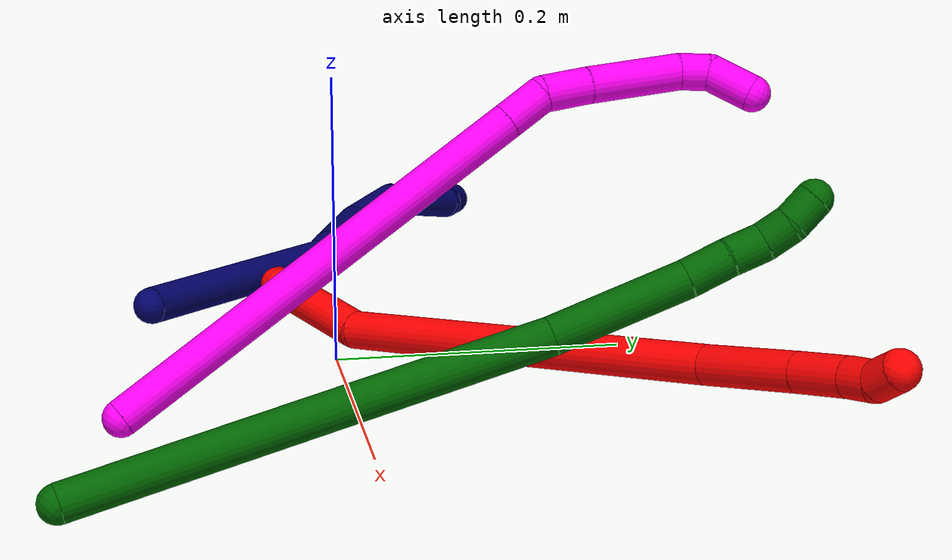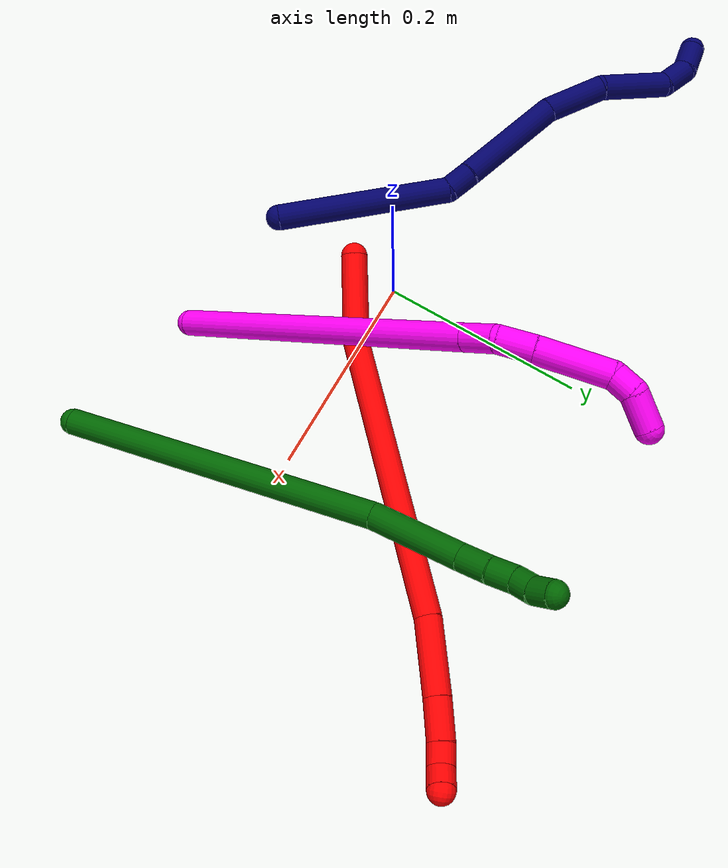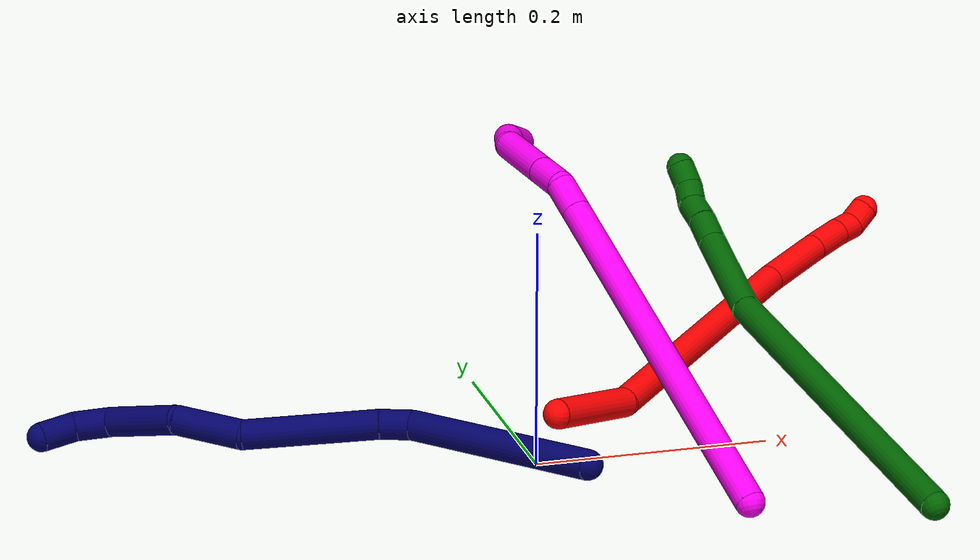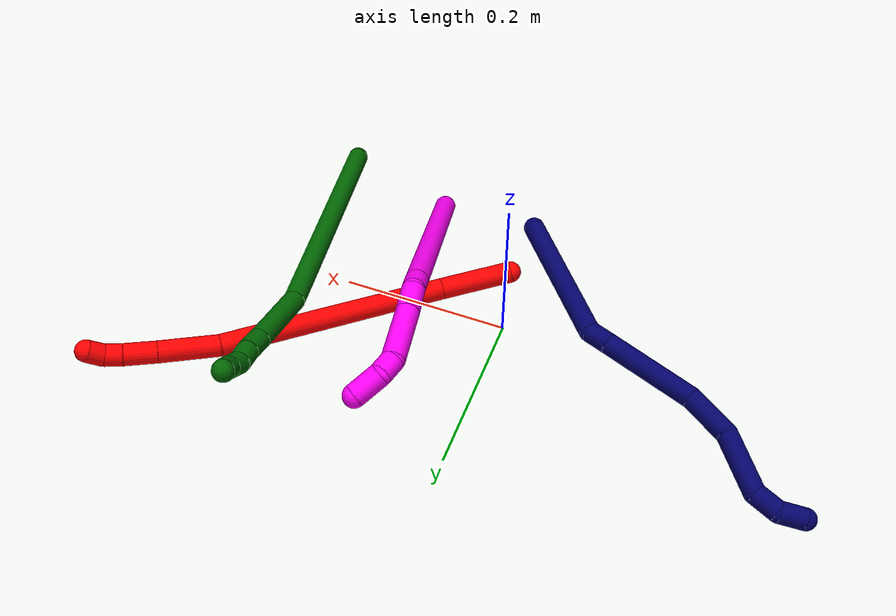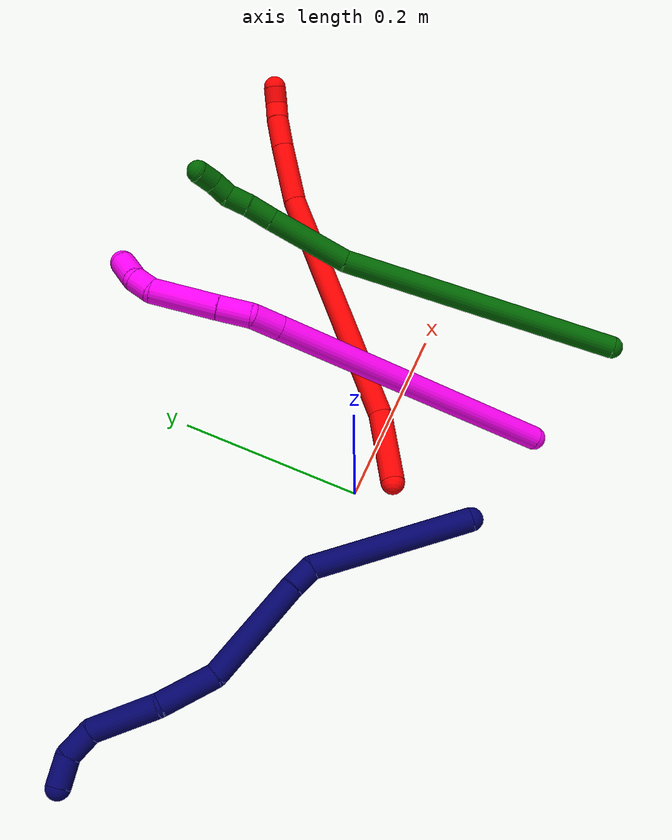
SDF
<sdf version="1.7">
 <world name="default">
  <model name="photoneo_s_sensor">
   <static>1</static>
   <pose>0 0 2 1.57079 1.57079 3.14159</pose>
   <link name="link">
    <inertial><mass>0.1</mass></inertial>
    <sensor name="sensor" type="depth">
     <update_rate>30</update_rate>
     <camera>
      <horizontal_fov>1.22</horizontal_fov>
      <image><width>1920</width><height>1200</height><format>B8G8R8</format></image>
      <clip><near>0.1</near><far>4</far></clip>
      <depth_camera><output>points</output></depth_camera>
     </camera>
     <plugin name="camera_plugin" filename="libgazebo_ros_depth_camera.so">
      <baseline>0.2</baseline>
      <alwaysOn>1</alwaysOn>
      <updateRate>0.0</updateRate>
      <cameraName>camera_ir</cameraName>
      <imageTopicName>/camera/color/image_raw</imageTopicName>
      <cameraInfoTopicName>/camera/color/camera_info</cameraInfoTopicName>
      <depthImageTopicName>/camera/depth/image_raw</depthImageTopicName>
      <depthImageCameraInfoTopicName>/camera/depth/camera_info</depthImageCameraInfoTopicName>
      <pointCloudTopicName>/camera/depth/points</pointCloudTopicName>
      <frameName>fr_optical</frameName>
      <pointCloudCutoff>0.1</pointCloudCutoff>
      <pointCloudCutoffMax>2.0</pointCloudCutoffMax>
      <distortionK1>0</distortionK1>
      <distortionK2>0</distortionK2>
      <distortionK3>0</distortionK3>
      <distortionT1>0</distortionT1>
      <distortionT2>0</distortionT2>
      <CxPrime>0</CxPrime>
      <Cx>0</Cx>
      <Cy>0</Cy>
      <focalLength>0</focalLength>
      <hackBaseline>0</hackBaseline>
     </plugin>
    </sensor>
   </link>
  </model>
  <model name="bin">
   <static>1</static>
   <link name="bottom">
    <collision name="collision-bottom">
     <pose>0 0 -0.01 0 -0 0</pose>
     <geometry><box><size>0.8 0.6 0.02</size></box></geometry>
     <surface>
      <friction><ode><mu>100</mu><mu2>100</mu2></ode></friction>
      <contact><collide_bitmask>65535</collide_bitmask></contact>
     </surface>
    </collision>
   </link>
   <link name="west_wall">
    <collision name="collision-west_wall">
     <pose>-0.41 0 0.1 0 -0 0</pose>
     <geometry><box><size>0.02 0.6 0.2</size></box></geometry>
     <surface>
      <friction><ode><mu>100</mu><mu2>100</mu2></ode></friction>
      <contact><collide_bitmask>65535</collide_bitmask></contact>
     </surface>
    </collision>
   </link>
   <link name="east_wall">
    <collision name="collision-east_wall">
     <pose>0.41 0 0.1 0 -0 0</pose>
     <geometry><box><size>0.02 0.6 0.2</size></box></geometry>
     <surface>
      <friction><ode><mu>100</mu><mu2>100</mu2></ode></friction>
      <contact><collide_bitmask>65535</collide_bitmask></contact>
     </surface>
    </collision>
   </link>
   <link name="south_wall">
    <collision name="collision-south_wall">
     <pose>0 -0.31 0.1 0 -0 0</pose>
     <geometry><box><size>0.8 0.02 0.2</size></box></geometry>
     <surface>
      <friction><ode><mu>100</mu><mu2>100</mu2></ode></friction>
      <contact><collide_bitmask>65535</collide_bitmask></contact>
     </surface>
    </collision>
   </link>
   <link name="north_wall">
    <collision name="collision-north_wall">
     <pose>0 0.31 0.1 0 -0 0</pose>
     <geometry><box><size>0.8 0.02 0.2</size></box></geometry>
     <surface>
      <friction><ode><mu>100</mu><mu2>100</mu2></ode></friction>
      <contact><collide_bitmask>65535</collide_bitmask></contact>
     </surface>
    </collision>
   </link>
  </model>
  <model name="2">
   <static>0</static>
   <link name="2">
    <collision name="collision-cylinder-e_1_1_4">
     <pose>0.006972 0.002266 0.041211 -0.054936 0.167333 -0.004608</pose>
     <geometry><cylinder><radius>0.0125</radius><length>0.083716</length></cylinder></geometry>
     <surface>
      <friction><ode><mu>1.16</mu><mu2>1.16</mu2><slip1>0</slip1><slip2>0</slip2></ode></friction>
      <contact><ode><kp>1e+06</kp><kd>1</kd><max_vel>0</max_vel><min_depth>0.001</min_depth></ode></contact>
     </surface>
    </collision>
    <visual name="visual-cylinder-e_1_1_4">
     <pose>0.006972 0.002266 0.041211 -0.054936 0.167333 -0.004608</pose>
     <geometry><cylinder><radius>0.0125</radius><length>0.083716</length></cylinder></geometry>
     <material><ambient>1 0 0 1</ambient></material>
    </visual>
    <collision name="collision-cylinder-e_2_4_5">
     <pose>0.049408 0.053351 0.203459 -0.383377 0.265331 -0.051786</pose>
     <geometry><cylinder><radius>0.0125</radius><length>0.270488</length></cylinder></geometry>
     <surface>
      <friction><ode><mu>1.16</mu><mu2>1.16</mu2><slip1>0</slip1><slip2>0</slip2></ode></friction>
      <contact><ode><kp>1e+06</kp><kd>1</kd><max_vel>0</max_vel><min_depth>0.001</min_depth></ode></contact>
     </surface>
    </collision>
    <visual name="visual-cylinder-e_2_4_5">
     <pose>0.049408 0.053351 0.203459 -0.383377 0.265331 -0.051786</pose>
     <geometry><cylinder><radius>0.0125</radius><length>0.270488</length></cylinder></geometry>
     <material><ambient>1 0 0 1</ambient></material>
    </visual>
    <collision name="collision-cylinder-e_3_5_6">
     <pose>0.088785 0.114786 0.356349 -0.377126 0.113687 -0.021717</pose>
     <geometry><cylinder><radius>0.0125</radius><length>0.068966</length></cylinder></geometry>
     <surface>
      <friction><ode><mu>1.16</mu><mu2>1.16</mu2><slip1>0</slip1><slip2>0</slip2></ode></friction>
      <contact><ode><kp>1e+06</kp><kd>1</kd><max_vel>0</max_vel><min_depth>0.001</min_depth></ode></contact>
     </surface>
    </collision>
    <visual name="visual-cylinder-e_3_5_6">
     <pose>0.088785 0.114786 0.356349 -0.377126 0.113687 -0.021717</pose>
     <geometry><cylinder><radius>0.0125</radius><length>0.068966</length></cylinder></geometry>
     <material><ambient>1 0 0 1</ambient></material>
    </visual>
    <collision name="collision-cylinder-e_4_6_7">
     <pose>0.094237 0.133826 0.405261 -0.360125 0.084287 -0.015352</pose>
     <geometry><cylinder><radius>0.0125</radius><length>0.036587</length></cylinder></geometry>
     <surface>
      <friction><ode><mu>1.16</mu><mu2>1.16</mu2><slip1>0</slip1><slip2>0</slip2></ode></friction>
      <contact><ode><kp>1e+06</kp><kd>1</kd><max_vel>0</max_vel><min_depth>0.001</min_depth></ode></contact>
     </surface>
    </collision>
    <visual name="visual-cylinder-e_4_6_7">
     <pose>0.094237 0.133826 0.405261 -0.360125 0.084287 -0.015352</pose>
     <geometry><cylinder><radius>0.0125</radius><length>0.036587</length></cylinder></geometry>
     <material><ambient>1 0 0 1</ambient></material>
    </visual>
    <collision name="collision-cylinder-e_5_7_8">
     <pose>0.095849 0.143191 0.431942 -0.296731 0.007145 -0.001068</pose>
     <geometry><cylinder><radius>0.0125</radius><length>0.020124</length></cylinder></geometry>
     <surface>
      <friction><ode><mu>1.16</mu><mu2>1.16</mu2><slip1>0</slip1><slip2>0</slip2></ode></friction>
      <contact><ode><kp>1e+06</kp><kd>1</kd><max_vel>0</max_vel><min_depth>0.001</min_depth></ode></contact>
     </surface>
    </collision>
    <visual name="visual-cylinder-e_5_7_8">
     <pose>0.095849 0.143191 0.431942 -0.296731 0.007145 -0.001068</pose>
     <geometry><cylinder><radius>0.0125</radius><length>0.020124</length></cylinder></geometry>
     <material><ambient>1 0 0 1</ambient></material>
    </visual>
    <collision name="collision-cylinder-e_6_8_2">
     <pose>0.094446 0.152705 0.449036 -0.72139 -0.147105 0.055574</pose>
     <geometry><cylinder><radius>0.0125</radius><length>0.020119</length></cylinder></geometry>
     <surface>
      <friction><ode><mu>1.16</mu><mu2>1.16</mu2><slip1>0</slip1><slip2>0</slip2></ode></friction>
      <contact><ode><kp>1e+06</kp><kd>1</kd><max_vel>0</max_vel><min_depth>0.001</min_depth></ode></contact>
     </surface>
    </collision>
    <visual name="visual-cylinder-e_6_8_2">
     <pose>0.094446 0.152705 0.449036 -0.72139 -0.147105 0.055574</pose>
     <geometry><cylinder><radius>0.0125</radius><length>0.020119</length></cylinder></geometry>
     <material><ambient>1 0 0 1</ambient></material>
    </visual>
    <collision name="collision-sphere-2">
     <pose>0.092972 0.159277 0.456508 0 -0 0</pose>
     <geometry><sphere><radius>0.0125</radius></sphere></geometry>
     <surface>
      <friction><ode><mu>1.16</mu><mu2>1.16</mu2><slip1>0</slip1><slip2>0</slip2></ode></friction>
      <contact><ode><kp>1e+06</kp><kd>1</kd><max_vel>0</max_vel><min_depth>0.001</min_depth></ode></contact>
     </surface>
    </collision>
    <visual name="visual-sphere-2">
     <pose>0.092972 0.159277 0.456508 0 -0 0</pose>
     <geometry><sphere><radius>0.0125</radius></sphere></geometry>
     <material><ambient>1 0 0 1</ambient></material>
    </visual>
    <collision name="collision-sphere-4">
     <pose>0.013943 0.004533 0.082422 0 -0 0</pose>
     <geometry><sphere><radius>0.0125</radius></sphere></geometry>
     <surface>
      <friction><ode><mu>1.16</mu><mu2>1.16</mu2><slip1>0</slip1><slip2>0</slip2></ode></friction>
      <contact><ode><kp>1e+06</kp><kd>1</kd><max_vel>0</max_vel><min_depth>0.001</min_depth></ode></contact>
     </surface>
    </collision>
    <visual name="visual-sphere-4">
     <pose>0.013943 0.004533 0.082422 0 -0 0</pose>
     <geometry><sphere><radius>0.0125</radius></sphere></geometry>
     <material><ambient>1 0 0 1</ambient></material>
    </visual>
    <collision name="collision-sphere-1">
     <geometry><sphere><radius>0.0125</radius></sphere></geometry>
     <surface>
      <friction><ode><mu>1.16</mu><mu2>1.16</mu2><slip1>0</slip1><slip2>0</slip2></ode></friction>
      <contact><ode><kp>1e+06</kp><kd>1</kd><max_vel>0</max_vel><min_depth>0.001</min_depth></ode></contact>
     </surface>
    </collision>
    <visual name="visual-sphere-1">
     <geometry><sphere><radius>0.0125</radius></sphere></geometry>
     <material><ambient>1 0 0 1</ambient></material>
    </visual>
    <collision name="collision-sphere-8">
     <pose>0.095921 0.146133 0.441564 0 -0 0</pose>
     <geometry><sphere><radius>0.0125</radius></sphere></geometry>
     <surface>
      <friction><ode><mu>1.16</mu><mu2>1.16</mu2><slip1>0</slip1><slip2>0</slip2></ode></friction>
      <contact><ode><kp>1e+06</kp><kd>1</kd><max_vel>0</max_vel><min_depth>0.001</min_depth></ode></contact>
     </surface>
    </collision>
    <visual name="visual-sphere-8">
     <pose>0.095921 0.146133 0.441564 0 -0 0</pose>
     <geometry><sphere><radius>0.0125</radius></sphere></geometry>
     <material><ambient>1 0 0 1</ambient></material>
    </visual>
    <collision name="collision-sphere-5">
     <pose>0.084873 0.102169 0.324496 0 -0 0</pose>
     <geometry><sphere><radius>0.0125</radius></sphere></geometry>
     <surface>
      <friction><ode><mu>1.16</mu><mu2>1.16</mu2><slip1>0</slip1><slip2>0</slip2></ode></friction>
      <contact><ode><kp>1e+06</kp><kd>1</kd><max_vel>0</max_vel><min_depth>0.001</min_depth></ode></contact>
     </surface>
    </collision>
    <visual name="visual-sphere-5">
     <pose>0.084873 0.102169 0.324496 0 -0 0</pose>
     <geometry><sphere><radius>0.0125</radius></sphere></geometry>
     <material><ambient>1 0 0 1</ambient></material>
    </visual>
    <collision name="collision-sphere-6">
     <pose>0.092697 0.127402 0.388201 0 -0 0</pose>
     <geometry><sphere><radius>0.0125</radius></sphere></geometry>
     <surface>
      <friction><ode><mu>1.16</mu><mu2>1.16</mu2><slip1>0</slip1><slip2>0</slip2></ode></friction>
      <contact><ode><kp>1e+06</kp><kd>1</kd><max_vel>0</max_vel><min_depth>0.001</min_depth></ode></contact>
     </surface>
    </collision>
    <visual name="visual-sphere-6">
     <pose>0.092697 0.127402 0.388201 0 -0 0</pose>
     <geometry><sphere><radius>0.0125</radius></sphere></geometry>
     <material><ambient>1 0 0 1</ambient></material>
    </visual>
    <collision name="collision-sphere-7">
     <pose>0.095777 0.140249 0.42232 0 -0 0</pose>
     <geometry><sphere><radius>0.0125</radius></sphere></geometry>
     <surface>
      <friction><ode><mu>1.16</mu><mu2>1.16</mu2><slip1>0</slip1><slip2>0</slip2></ode></friction>
      <contact><ode><kp>1e+06</kp><kd>1</kd><max_vel>0</max_vel><min_depth>0.001</min_depth></ode></contact>
     </surface>
    </collision>
    <visual name="visual-sphere-7">
     <pose>0.095777 0.140249 0.42232 0 -0 0</pose>
     <geometry><sphere><radius>0.0125</radius></sphere></geometry>
     <material><ambient>1 0 0 1</ambient></material>
    </visual>
    <inertial>
     <pose>0.054696 0.066774 0.231226 0 -0 0</pose>
     <mass>0.5</mass>
     <inertia>
      <ixx>0.001613</ixx>
      <ixy>0</ixy>
      <ixz>0</ixz>
      <iyy>0.001562</iyy>
      <iyz>0</iyz>
      <izz>-0.001028</izz>
     </inertia>
    </inertial>
   </link>
   <pose>0.006617 -0.039318 0.05814 1.72063 0.398673 2.00578</pose>
  </model>
  <model name="6">
   <static>0</static>
   <link name="6">
    <collision name="collision-cylinder-e_1_1_4">
     <pose>0.003516 0.087813 0.130255 -0.593176 0.02238 -0.00684</pose>
     <geometry><cylinder><radius>0.0125</radius><length>0.31426</length></cylinder></geometry>
     <surface>
      <friction><ode><mu>1.16</mu><mu2>1.16</mu2><slip1>0</slip1><slip2>0</slip2></ode></friction>
      <contact><ode><kp>1e+06</kp><kd>1</kd><max_vel>0</max_vel><min_depth>0.001</min_depth></ode></contact>
     </surface>
    </collision>
    <visual name="visual-cylinder-e_1_1_4">
     <pose>0.003516 0.087813 0.130255 -0.593176 0.02238 -0.00684</pose>
     <geometry><cylinder><radius>0.0125</radius><length>0.31426</length></cylinder></geometry>
     <material><ambient>0 0.392157 0.003922 1</ambient></material>
    </visual>
    <collision name="collision-cylinder-e_2_4_5">
     <pose>0.014373 0.194776 0.301304 -0.438875 0.161468 -0.036087</pose>
     <geometry><cylinder><radius>0.0125</radius><length>0.091319</length></cylinder></geometry>
     <surface>
      <friction><ode><mu>1.16</mu><mu2>1.16</mu2><slip1>0</slip1><slip2>0</slip2></ode></friction>
      <contact><ode><kp>1e+06</kp><kd>1</kd><max_vel>0</max_vel><min_depth>0.001</min_depth></ode></contact>
     </surface>
    </collision>
    <visual name="visual-cylinder-e_2_4_5">
     <pose>0.014373 0.194776 0.301304 -0.438875 0.161468 -0.036087</pose>
     <geometry><cylinder><radius>0.0125</radius><length>0.091319</length></cylinder></geometry>
     <material><ambient>0 0.392157 0.003922 1</ambient></material>
    </visual>
    <collision name="collision-cylinder-e_3_5_6">
     <pose>0.023781 0.219076 0.355564 -0.36536 0.142385 -0.026347</pose>
     <geometry><cylinder><radius>0.0125</radius><length>0.029128</length></cylinder></geometry>
     <surface>
      <friction><ode><mu>1.16</mu><mu2>1.16</mu2><slip1>0</slip1><slip2>0</slip2></ode></friction>
      <contact><ode><kp>1e+06</kp><kd>1</kd><max_vel>0</max_vel><min_depth>0.001</min_depth></ode></contact>
     </surface>
    </collision>
    <visual name="visual-cylinder-e_3_5_6">
     <pose>0.023781 0.219076 0.355564 -0.36536 0.142385 -0.026347</pose>
     <geometry><cylinder><radius>0.0125</radius><length>0.029128</length></cylinder></geometry>
     <material><ambient>0 0.392157 0.003922 1</ambient></material>
    </visual>
    <collision name="collision-cylinder-e_4_6_7">
     <pose>0.026885 0.229564 0.379808 -0.459743 0.086096 -0.020159</pose>
     <geometry><cylinder><radius>0.0125</radius><length>0.024144</length></cylinder></geometry>
     <surface>
      <friction><ode><mu>1.16</mu><mu2>1.16</mu2><slip1>0</slip1><slip2>0</slip2></ode></friction>
      <contact><ode><kp>1e+06</kp><kd>1</kd><max_vel>0</max_vel><min_depth>0.001</min_depth></ode></contact>
     </surface>
    </collision>
    <visual name="visual-cylinder-e_4_6_7">
     <pose>0.026885 0.229564 0.379808 -0.459743 0.086096 -0.020159</pose>
     <geometry><cylinder><radius>0.0125</radius><length>0.024144</length></cylinder></geometry>
     <material><ambient>0 0.392157 0.003922 1</ambient></material>
    </visual>
    <collision name="collision-cylinder-e_5_7_8">
     <pose>0.030334 0.236506 0.400235 -0.164855 0.241611 -0.020058</pose>
     <geometry><cylinder><radius>0.0125</radius><length>0.020147</length></cylinder></geometry>
     <surface>
      <friction><ode><mu>1.16</mu><mu2>1.16</mu2><slip1>0</slip1><slip2>0</slip2></ode></friction>
      <contact><ode><kp>1e+06</kp><kd>1</kd><max_vel>0</max_vel><min_depth>0.001</min_depth></ode></contact>
     </surface>
    </collision>
    <visual name="visual-cylinder-e_5_7_8">
     <pose>0.030334 0.236506 0.400235 -0.164855 0.241611 -0.020058</pose>
     <geometry><cylinder><radius>0.0125</radius><length>0.020147</length></cylinder></geometry>
     <material><ambient>0 0.392157 0.003922 1</ambient></material>
    </visual>
    <collision name="collision-cylinder-e_6_8_2">
     <pose>0.032469 0.238738 0.420361 -0.059837 -0.026183 0.000784</pose>
     <geometry><cylinder><radius>0.0125</radius><length>0.021001</length></cylinder></geometry>
     <surface>
      <friction><ode><mu>1.16</mu><mu2>1.16</mu2><slip1>0</slip1><slip2>0</slip2></ode></friction>
      <contact><ode><kp>1e+06</kp><kd>1</kd><max_vel>0</max_vel><min_depth>0.001</min_depth></ode></contact>
     </surface>
    </collision>
    <visual name="visual-cylinder-e_6_8_2">
     <pose>0.032469 0.238738 0.420361 -0.059837 -0.026183 0.000784</pose>
     <geometry><cylinder><radius>0.0125</radius><length>0.021001</length></cylinder></geometry>
     <material><ambient>0 0.392157 0.003922 1</ambient></material>
    </visual>
    <collision name="collision-sphere-2">
     <pose>0.032194 0.239366 0.43084 0 -0 0</pose>
     <geometry><sphere><radius>0.0125</radius></sphere></geometry>
     <surface>
      <friction><ode><mu>1.16</mu><mu2>1.16</mu2><slip1>0</slip1><slip2>0</slip2></ode></friction>
      <contact><ode><kp>1e+06</kp><kd>1</kd><max_vel>0</max_vel><min_depth>0.001</min_depth></ode></contact>
     </surface>
    </collision>
    <visual name="visual-sphere-2">
     <pose>0.032194 0.239366 0.43084 0 -0 0</pose>
     <geometry><sphere><radius>0.0125</radius></sphere></geometry>
     <material><ambient>0 0.392157 0.003922 1</ambient></material>
    </visual>
    <collision name="collision-sphere-4">
     <pose>0.007033 0.175626 0.26051 0 -0 0</pose>
     <geometry><sphere><radius>0.0125</radius></sphere></geometry>
     <surface>
      <friction><ode><mu>1.16</mu><mu2>1.16</mu2><slip1>0</slip1><slip2>0</slip2></ode></friction>
      <contact><ode><kp>1e+06</kp><kd>1</kd><max_vel>0</max_vel><min_depth>0.001</min_depth></ode></contact>
     </surface>
    </collision>
    <visual name="visual-sphere-4">
     <pose>0.007033 0.175626 0.26051 0 -0 0</pose>
     <geometry><sphere><radius>0.0125</radius></sphere></geometry>
     <material><ambient>0 0.392157 0.003922 1</ambient></material>
    </visual>
    <collision name="collision-sphere-1">
     <geometry><sphere><radius>0.0125</radius></sphere></geometry>
     <surface>
      <friction><ode><mu>1.16</mu><mu2>1.16</mu2><slip1>0</slip1><slip2>0</slip2></ode></friction>
      <contact><ode><kp>1e+06</kp><kd>1</kd><max_vel>0</max_vel><min_depth>0.001</min_depth></ode></contact>
     </surface>
    </collision>
    <visual name="visual-sphere-1">
     <geometry><sphere><radius>0.0125</radius></sphere></geometry>
     <material><ambient>0 0.392157 0.003922 1</ambient></material>
    </visual>
    <collision name="collision-sphere-8">
     <pose>0.032744 0.238111 0.409883 0 -0 0</pose>
     <geometry><sphere><radius>0.0125</radius></sphere></geometry>
     <surface>
      <friction><ode><mu>1.16</mu><mu2>1.16</mu2><slip1>0</slip1><slip2>0</slip2></ode></friction>
      <contact><ode><kp>1e+06</kp><kd>1</kd><max_vel>0</max_vel><min_depth>0.001</min_depth></ode></contact>
     </surface>
    </collision>
    <visual name="visual-sphere-8">
     <pose>0.032744 0.238111 0.409883 0 -0 0</pose>
     <geometry><sphere><radius>0.0125</radius></sphere></geometry>
     <material><ambient>0 0.392157 0.003922 1</ambient></material>
    </visual>
    <collision name="collision-sphere-5">
     <pose>0.021714 0.213925 0.342099 0 -0 0</pose>
     <geometry><sphere><radius>0.0125</radius></sphere></geometry>
     <surface>
      <friction><ode><mu>1.16</mu><mu2>1.16</mu2><slip1>0</slip1><slip2>0</slip2></ode></friction>
      <contact><ode><kp>1e+06</kp><kd>1</kd><max_vel>0</max_vel><min_depth>0.001</min_depth></ode></contact>
     </surface>
    </collision>
    <visual name="visual-sphere-5">
     <pose>0.021714 0.213925 0.342099 0 -0 0</pose>
     <geometry><sphere><radius>0.0125</radius></sphere></geometry>
     <material><ambient>0 0.392157 0.003922 1</ambient></material>
    </visual>
    <collision name="collision-sphere-6">
     <pose>0.025847 0.224227 0.369029 0 -0 0</pose>
     <geometry><sphere><radius>0.0125</radius></sphere></geometry>
     <surface>
      <friction><ode><mu>1.16</mu><mu2>1.16</mu2><slip1>0</slip1><slip2>0</slip2></ode></friction>
      <contact><ode><kp>1e+06</kp><kd>1</kd><max_vel>0</max_vel><min_depth>0.001</min_depth></ode></contact>
     </surface>
    </collision>
    <visual name="visual-sphere-6">
     <pose>0.025847 0.224227 0.369029 0 -0 0</pose>
     <geometry><sphere><radius>0.0125</radius></sphere></geometry>
     <material><ambient>0 0.392157 0.003922 1</ambient></material>
    </visual>
    <collision name="collision-sphere-7">
     <pose>0.027923 0.2349 0.390586 0 -0 0</pose>
     <geometry><sphere><radius>0.0125</radius></sphere></geometry>
     <surface>
      <friction><ode><mu>1.16</mu><mu2>1.16</mu2><slip1>0</slip1><slip2>0</slip2></ode></friction>
      <contact><ode><kp>1e+06</kp><kd>1</kd><max_vel>0</max_vel><min_depth>0.001</min_depth></ode></contact>
     </surface>
    </collision>
    <visual name="visual-sphere-7">
     <pose>0.027923 0.2349 0.390586 0 -0 0</pose>
     <geometry><sphere><radius>0.0125</radius></sphere></geometry>
     <material><ambient>0 0.392157 0.003922 1</ambient></material>
    </visual>
    <inertial>
     <pose>0.010105 0.134171 0.209735 0 -0 0</pose>
     <mass>0.5</mass>
     <inertia>
      <ixx>0.002655</ixx>
      <ixy>0</ixy>
      <ixz>0</ixz>
      <iyy>0.002222</iyy>
      <iyz>0</iyz>
      <izz>-0.001519</izz>
     </inertia>
    </inertial>
   </link>
   <pose>0.272287 -0.194972 0.011659 -0.757957 0.060674 0.215802</pose>
  </model>
  <model name="7">
   <static>0</static>
   <link name="7">
    <collision name="collision-cylinder-e_1_1_4">
     <pose>-0.050271 0.011015 0.066929 -0.163117 -0.637803 0.053963</pose>
     <geometry><cylinder><radius>0.0125</radius><length>0.168855</length></cylinder></geometry>
     <surface>
      <friction><ode><mu>1.16</mu><mu2>1.16</mu2><slip1>0</slip1><slip2>0</slip2></ode></friction>
      <contact><ode><kp>1e+06</kp><kd>1</kd><max_vel>0</max_vel><min_depth>0.001</min_depth></ode></contact>
     </surface>
    </collision>
    <visual name="visual-cylinder-e_1_1_4">
     <pose>-0.050271 0.011015 0.066929 -0.163117 -0.637803 0.053963</pose>
     <geometry><cylinder><radius>0.0125</radius><length>0.168855</length></cylinder></geometry>
     <material><ambient>0.003922 0 0.403922 1</ambient></material>
    </visual>
    <collision name="collision-cylinder-e_2_4_5">
     <pose>-0.1113 0.027528 0.139541 -0.768828 -0.937048 0.403902</pose>
     <geometry><cylinder><radius>0.0125</radius><length>0.026703</length></cylinder></geometry>
     <surface>
      <friction><ode><mu>1.16</mu><mu2>1.16</mu2><slip1>0</slip1><slip2>0</slip2></ode></friction>
      <contact><ode><kp>1e+06</kp><kd>1</kd><max_vel>0</max_vel><min_depth>0.001</min_depth></ode></contact>
     </surface>
    </collision>
    <visual name="visual-cylinder-e_2_4_5">
     <pose>-0.1113 0.027528 0.139541 -0.768828 -0.937048 0.403902</pose>
     <geometry><cylinder><radius>0.0125</radius><length>0.026703</length></cylinder></geometry>
     <material><ambient>0.003922 0 0.403922 1</ambient></material>
    </visual>
    <collision name="collision-cylinder-e_3_5_6">
     <pose>-0.165006 0.061549 0.168205 -0.892597 -0.864614 0.434601</pose>
     <geometry><cylinder><radius>0.0125</radius><length>0.112894</length></cylinder></geometry>
     <surface>
      <friction><ode><mu>1.16</mu><mu2>1.16</mu2><slip1>0</slip1><slip2>0</slip2></ode></friction>
      <contact><ode><kp>1e+06</kp><kd>1</kd><max_vel>0</max_vel><min_depth>0.001</min_depth></ode></contact>
     </surface>
    </collision>
    <visual name="visual-cylinder-e_3_5_6">
     <pose>-0.165006 0.061549 0.168205 -0.892597 -0.864614 0.434601</pose>
     <geometry><cylinder><radius>0.0125</radius><length>0.112894</length></cylinder></geometry>
     <material><ambient>0.003922 0 0.403922 1</ambient></material>
    </visual>
    <collision name="collision-cylinder-e_4_6_7">
     <pose>-0.230416 0.09571 0.210008 -0.291004 -0.852146 0.132824</pose>
     <geometry><cylinder><radius>0.0125</radius><length>0.059686</length></cylinder></geometry>
     <surface>
      <friction><ode><mu>1.16</mu><mu2>1.16</mu2><slip1>0</slip1><slip2>0</slip2></ode></friction>
      <contact><ode><kp>1e+06</kp><kd>1</kd><max_vel>0</max_vel><min_depth>0.001</min_depth></ode></contact>
     </surface>
    </collision>
    <visual name="visual-cylinder-e_4_6_7">
     <pose>-0.230416 0.09571 0.210008 -0.291004 -0.852146 0.132824</pose>
     <geometry><cylinder><radius>0.0125</radius><length>0.059686</length></cylinder></geometry>
     <material><ambient>0.003922 0 0.403922 1</ambient></material>
    </visual>
    <collision name="collision-cylinder-e_5_7_8">
     <pose>-0.269336 0.111922 0.258475 -0.342646 -0.48178 0.084957</pose>
     <geometry><cylinder><radius>0.0125</radius><length>0.071035</length></cylinder></geometry>
     <surface>
      <friction><ode><mu>1.16</mu><mu2>1.16</mu2><slip1>0</slip1><slip2>0</slip2></ode></friction>
      <contact><ode><kp>1e+06</kp><kd>1</kd><max_vel>0</max_vel><min_depth>0.001</min_depth></ode></contact>
     </surface>
    </collision>
    <visual name="visual-cylinder-e_5_7_8">
     <pose>-0.269336 0.111922 0.258475 -0.342646 -0.48178 0.084957</pose>
     <geometry><cylinder><radius>0.0125</radius><length>0.071035</length></cylinder></geometry>
     <material><ambient>0.003922 0 0.403922 1</ambient></material>
    </visual>
    <collision name="collision-cylinder-e_6_8_9">
     <pose>-0.296696 0.130658 0.295379 -0.843799 -0.78447 0.367173</pose>
     <geometry><cylinder><radius>0.0125</radius><length>0.030866</length></cylinder></geometry>
     <surface>
      <friction><ode><mu>1.16</mu><mu2>1.16</mu2><slip1>0</slip1><slip2>0</slip2></ode></friction>
      <contact><ode><kp>1e+06</kp><kd>1</kd><max_vel>0</max_vel><min_depth>0.001</min_depth></ode></contact>
     </surface>
    </collision>
    <visual name="visual-cylinder-e_6_8_9">
     <pose>-0.296696 0.130658 0.295379 -0.843799 -0.78447 0.367173</pose>
     <geometry><cylinder><radius>0.0125</radius><length>0.030866</length></cylinder></geometry>
     <material><ambient>0.003922 0 0.403922 1</ambient></material>
    </visual>
    <collision name="collision-cylinder-e_7_9_2">
     <pose>-0.318141 0.149461 0.302852 -1.55074 -0.78058 0.766565</pose>
     <geometry><cylinder><radius>0.0125</radius><length>0.029962</length></cylinder></geometry>
     <surface>
      <friction><ode><mu>1.16</mu><mu2>1.16</mu2><slip1>0</slip1><slip2>0</slip2></ode></friction>
      <contact><ode><kp>1e+06</kp><kd>1</kd><max_vel>0</max_vel><min_depth>0.001</min_depth></ode></contact>
     </surface>
    </collision>
    <visual name="visual-cylinder-e_7_9_2">
     <pose>-0.318141 0.149461 0.302852 -1.55074 -0.78058 0.766565</pose>
     <geometry><cylinder><radius>0.0125</radius><length>0.029962</length></cylinder></geometry>
     <material><ambient>0.003922 0 0.403922 1</ambient></material>
    </visual>
    <collision name="collision-sphere-2">
     <pose>-0.328683 0.160103 0.303066 0 -0 0</pose>
     <geometry><sphere><radius>0.0125</radius></sphere></geometry>
     <surface>
      <friction><ode><mu>1.16</mu><mu2>1.16</mu2><slip1>0</slip1><slip2>0</slip2></ode></friction>
      <contact><ode><kp>1e+06</kp><kd>1</kd><max_vel>0</max_vel><min_depth>0.001</min_depth></ode></contact>
     </surface>
    </collision>
    <visual name="visual-sphere-2">
     <pose>-0.328683 0.160103 0.303066 0 -0 0</pose>
     <geometry><sphere><radius>0.0125</radius></sphere></geometry>
     <material><ambient>0.003922 0 0.403922 1</ambient></material>
    </visual>
    <collision name="collision-sphere-9">
     <pose>-0.307599 0.13882 0.302639 0 -0 0</pose>
     <geometry><sphere><radius>0.0125</radius></sphere></geometry>
     <surface>
      <friction><ode><mu>1.16</mu><mu2>1.16</mu2><slip1>0</slip1><slip2>0</slip2></ode></friction>
      <contact><ode><kp>1e+06</kp><kd>1</kd><max_vel>0</max_vel><min_depth>0.001</min_depth></ode></contact>
     </surface>
    </collision>
    <visual name="visual-sphere-9">
     <pose>-0.307599 0.13882 0.302639 0 -0 0</pose>
     <geometry><sphere><radius>0.0125</radius></sphere></geometry>
     <material><ambient>0.003922 0 0.403922 1</ambient></material>
    </visual>
    <collision name="collision-sphere-4">
     <pose>-0.100542 0.02203 0.133858 0 -0 0</pose>
     <geometry><sphere><radius>0.0125</radius></sphere></geometry>
     <surface>
      <friction><ode><mu>1.16</mu><mu2>1.16</mu2><slip1>0</slip1><slip2>0</slip2></ode></friction>
      <contact><ode><kp>1e+06</kp><kd>1</kd><max_vel>0</max_vel><min_depth>0.001</min_depth></ode></contact>
     </surface>
    </collision>
    <visual name="visual-sphere-4">
     <pose>-0.100542 0.02203 0.133858 0 -0 0</pose>
     <geometry><sphere><radius>0.0125</radius></sphere></geometry>
     <material><ambient>0.003922 0 0.403922 1</ambient></material>
    </visual>
    <collision name="collision-sphere-1">
     <geometry><sphere><radius>0.0125</radius></sphere></geometry>
     <surface>
      <friction><ode><mu>1.16</mu><mu2>1.16</mu2><slip1>0</slip1><slip2>0</slip2></ode></friction>
      <contact><ode><kp>1e+06</kp><kd>1</kd><max_vel>0</max_vel><min_depth>0.001</min_depth></ode></contact>
     </surface>
    </collision>
    <visual name="visual-sphere-1">
     <geometry><sphere><radius>0.0125</radius></sphere></geometry>
     <material><ambient>0.003922 0 0.403922 1</ambient></material>
    </visual>
    <collision name="collision-sphere-8">
     <pose>-0.285794 0.122497 0.288119 0 -0 0</pose>
     <geometry><sphere><radius>0.0125</radius></sphere></geometry>
     <surface>
      <friction><ode><mu>1.16</mu><mu2>1.16</mu2><slip1>0</slip1><slip2>0</slip2></ode></friction>
      <contact><ode><kp>1e+06</kp><kd>1</kd><max_vel>0</max_vel><min_depth>0.001</min_depth></ode></contact>
     </surface>
    </collision>
    <visual name="visual-sphere-8">
     <pose>-0.285794 0.122497 0.288119 0 -0 0</pose>
     <geometry><sphere><radius>0.0125</radius></sphere></geometry>
     <material><ambient>0.003922 0 0.403922 1</ambient></material>
    </visual>
    <collision name="collision-sphere-5">
     <pose>-0.122059 0.033025 0.145223 0 -0 0</pose>
     <geometry><sphere><radius>0.0125</radius></sphere></geometry>
     <surface>
      <friction><ode><mu>1.16</mu><mu2>1.16</mu2><slip1>0</slip1><slip2>0</slip2></ode></friction>
      <contact><ode><kp>1e+06</kp><kd>1</kd><max_vel>0</max_vel><min_depth>0.001</min_depth></ode></contact>
     </surface>
    </collision>
    <visual name="visual-sphere-5">
     <pose>-0.122059 0.033025 0.145223 0 -0 0</pose>
     <geometry><sphere><radius>0.0125</radius></sphere></geometry>
     <material><ambient>0.003922 0 0.403922 1</ambient></material>
    </visual>
    <collision name="collision-sphere-6">
     <pose>-0.207954 0.090073 0.191186 0 -0 0</pose>
     <geometry><sphere><radius>0.0125</radius></sphere></geometry>
     <surface>
      <friction><ode><mu>1.16</mu><mu2>1.16</mu2><slip1>0</slip1><slip2>0</slip2></ode></friction>
      <contact><ode><kp>1e+06</kp><kd>1</kd><max_vel>0</max_vel><min_depth>0.001</min_depth></ode></contact>
     </surface>
    </collision>
    <visual name="visual-sphere-6">
     <pose>-0.207954 0.090073 0.191186 0 -0 0</pose>
     <geometry><sphere><radius>0.0125</radius></sphere></geometry>
     <material><ambient>0.003922 0 0.403922 1</ambient></material>
    </visual>
    <collision name="collision-sphere-7">
     <pose>-0.252879 0.101347 0.22883 0 -0 0</pose>
     <geometry><sphere><radius>0.0125</radius></sphere></geometry>
     <surface>
      <friction><ode><mu>1.16</mu><mu2>1.16</mu2><slip1>0</slip1><slip2>0</slip2></ode></friction>
      <contact><ode><kp>1e+06</kp><kd>1</kd><max_vel>0</max_vel><min_depth>0.001</min_depth></ode></contact>
     </surface>
    </collision>
    <visual name="visual-sphere-7">
     <pose>-0.252879 0.101347 0.22883 0 -0 0</pose>
     <geometry><sphere><radius>0.0125</radius></sphere></geometry>
     <material><ambient>0.003922 0 0.403922 1</ambient></material>
    </visual>
    <inertial>
     <pose>-0.163327 0.063435 0.166206 0 -0 0</pose>
     <mass>0.5</mass>
     <inertia>
      <ixx>0.000481</ixx>
      <ixy>0</ixy>
      <ixz>0</ixz>
      <iyy>0.000635</iyy>
      <iyz>0</iyz>
      <izz>0.000263</izz>
     </inertia>
    </inertial>
   </link>
   <pose>0.005303 -0.126161 0.047442 -1.95717 0.590474 -0.104979</pose>
  </model>
  <model name="10">
   <static>0</static>
   <link name="10">
    <collision name="collision-cylinder-e_1_1_4">
     <pose>-0.014667 0.073038 0.139967 -0.480956 -0.092638 0.022732</pose>
     <geometry><cylinder><radius>0.0125</radius><length>0.317114</length></cylinder></geometry>
     <surface>
      <friction><ode><mu>1.16</mu><mu2>1.16</mu2><slip1>0</slip1><slip2>0</slip2></ode></friction>
      <contact><ode><kp>1e+06</kp><kd>1</kd><max_vel>0</max_vel><min_depth>0.001</min_depth></ode></contact>
     </surface>
    </collision>
    <visual name="visual-cylinder-e_1_1_4">
     <pose>-0.014667 0.073038 0.139967 -0.480956 -0.092638 0.022732</pose>
     <geometry><cylinder><radius>0.0125</radius><length>0.317114</length></cylinder></geometry>
     <material><ambient>1 0 0.964706 1</ambient></material>
    </visual>
    <collision name="collision-cylinder-e_2_4_5">
     <pose>-0.030795 0.152994 0.293278 -0.478249 -0.096821 0.023621</pose>
     <geometry><cylinder><radius>0.0125</radius><length>0.030204</length></cylinder></geometry>
     <surface>
      <friction><ode><mu>1.16</mu><mu2>1.16</mu2><slip1>0</slip1><slip2>0</slip2></ode></friction>
      <contact><ode><kp>1e+06</kp><kd>1</kd><max_vel>0</max_vel><min_depth>0.001</min_depth></ode></contact>
     </surface>
    </collision>
    <visual name="visual-cylinder-e_2_4_5">
     <pose>-0.030795 0.152994 0.293278 -0.478249 -0.096821 0.023621</pose>
     <geometry><cylinder><radius>0.0125</radius><length>0.030204</length></cylinder></geometry>
     <material><ambient>1 0 0.964706 1</ambient></material>
    </visual>
    <collision name="collision-cylinder-e_3_5_6">
     <pose>-0.033013 0.173157 0.316363 -0.936722 -0.046073 0.023312</pose>
     <geometry><cylinder><radius>0.0125</radius><length>0.032917</length></cylinder></geometry>
     <surface>
      <friction><ode><mu>1.16</mu><mu2>1.16</mu2><slip1>0</slip1><slip2>0</slip2></ode></friction>
      <contact><ode><kp>1e+06</kp><kd>1</kd><max_vel>0</max_vel><min_depth>0.001</min_depth></ode></contact>
     </surface>
    </collision>
    <visual name="visual-cylinder-e_3_5_6">
     <pose>-0.033013 0.173157 0.316363 -0.936722 -0.046073 0.023312</pose>
     <geometry><cylinder><radius>0.0125</radius><length>0.032917</length></cylinder></geometry>
     <material><ambient>1 0 0.964706 1</ambient></material>
    </visual>
    <collision name="collision-cylinder-e_4_6_7">
     <pose>-0.034006 0.213655 0.344979 -0.965031 -0.007089 0.003713</pose>
     <geometry><cylinder><radius>0.0125</radius><length>0.066304</length></cylinder></geometry>
     <surface>
      <friction><ode><mu>1.16</mu><mu2>1.16</mu2><slip1>0</slip1><slip2>0</slip2></ode></friction>
      <contact><ode><kp>1e+06</kp><kd>1</kd><max_vel>0</max_vel><min_depth>0.001</min_depth></ode></contact>
     </surface>
    </collision>
    <visual name="visual-cylinder-e_4_6_7">
     <pose>-0.034006 0.213655 0.344979 -0.965031 -0.007089 0.003713</pose>
     <geometry><cylinder><radius>0.0125</radius><length>0.066304</length></cylinder></geometry>
     <material><ambient>1 0 0.964706 1</ambient></material>
    </visual>
    <collision name="collision-cylinder-e_5_7_8">
     <pose>-0.030159 0.249267 0.368808 -1.0359 0.397714 -0.228667</pose>
     <geometry><cylinder><radius>0.0125</radius><length>0.021078</length></cylinder></geometry>
     <surface>
      <friction><ode><mu>1.16</mu><mu2>1.16</mu2><slip1>0</slip1><slip2>0</slip2></ode></friction>
      <contact><ode><kp>1e+06</kp><kd>1</kd><max_vel>0</max_vel><min_depth>0.001</min_depth></ode></contact>
     </surface>
    </collision>
    <visual name="visual-cylinder-e_5_7_8">
     <pose>-0.030159 0.249267 0.368808 -1.0359 0.397714 -0.228667</pose>
     <geometry><cylinder><radius>0.0125</radius><length>0.021078</length></cylinder></geometry>
     <material><ambient>1 0 0.964706 1</ambient></material>
    </visual>
    <collision name="collision-cylinder-e_6_8_2">
     <pose>-0.01545 0.269824 0.374421 -1.51672 0.715949 -0.681163</pose>
     <geometry><cylinder><radius>0.0125</radius><length>0.032383</length></cylinder></geometry>
     <surface>
      <friction><ode><mu>1.16</mu><mu2>1.16</mu2><slip1>0</slip1><slip2>0</slip2></ode></friction>
      <contact><ode><kp>1e+06</kp><kd>1</kd><max_vel>0</max_vel><min_depth>0.001</min_depth></ode></contact>
     </surface>
    </collision>
    <visual name="visual-cylinder-e_6_8_2">
     <pose>-0.01545 0.269824 0.374421 -1.51672 0.715949 -0.681163</pose>
     <geometry><cylinder><radius>0.0125</radius><length>0.032383</length></cylinder></geometry>
     <material><ambient>1 0 0.964706 1</ambient></material>
    </visual>
    <collision name="collision-sphere-2">
     <pose>-0.004823 0.282022 0.375081 0 -0 0</pose>
     <geometry><sphere><radius>0.0125</radius></sphere></geometry>
     <surface>
      <friction><ode><mu>1.16</mu><mu2>1.16</mu2><slip1>0</slip1><slip2>0</slip2></ode></friction>
      <contact><ode><kp>1e+06</kp><kd>1</kd><max_vel>0</max_vel><min_depth>0.001</min_depth></ode></contact>
     </surface>
    </collision>
    <visual name="visual-sphere-2">
     <pose>-0.004823 0.282022 0.375081 0 -0 0</pose>
     <geometry><sphere><radius>0.0125</radius></sphere></geometry>
     <material><ambient>1 0 0.964706 1</ambient></material>
    </visual>
    <collision name="collision-sphere-4">
     <pose>-0.029335 0.146076 0.279933 0 -0 0</pose>
     <geometry><sphere><radius>0.0125</radius></sphere></geometry>
     <surface>
      <friction><ode><mu>1.16</mu><mu2>1.16</mu2><slip1>0</slip1><slip2>0</slip2></ode></friction>
      <contact><ode><kp>1e+06</kp><kd>1</kd><max_vel>0</max_vel><min_depth>0.001</min_depth></ode></contact>
     </surface>
    </collision>
    <visual name="visual-sphere-4">
     <pose>-0.029335 0.146076 0.279933 0 -0 0</pose>
     <geometry><sphere><radius>0.0125</radius></sphere></geometry>
     <material><ambient>1 0 0.964706 1</ambient></material>
    </visual>
    <collision name="collision-sphere-1">
     <geometry><sphere><radius>0.0125</radius></sphere></geometry>
     <surface>
      <friction><ode><mu>1.16</mu><mu2>1.16</mu2><slip1>0</slip1><slip2>0</slip2></ode></friction>
      <contact><ode><kp>1e+06</kp><kd>1</kd><max_vel>0</max_vel><min_depth>0.001</min_depth></ode></contact>
     </surface>
    </collision>
    <visual name="visual-sphere-1">
     <geometry><sphere><radius>0.0125</radius></sphere></geometry>
     <material><ambient>1 0 0.964706 1</ambient></material>
    </visual>
    <collision name="collision-sphere-8">
     <pose>-0.026077 0.257626 0.373761 0 -0 0</pose>
     <geometry><sphere><radius>0.0125</radius></sphere></geometry>
     <surface>
      <friction><ode><mu>1.16</mu><mu2>1.16</mu2><slip1>0</slip1><slip2>0</slip2></ode></friction>
      <contact><ode><kp>1e+06</kp><kd>1</kd><max_vel>0</max_vel><min_depth>0.001</min_depth></ode></contact>
     </surface>
    </collision>
    <visual name="visual-sphere-8">
     <pose>-0.026077 0.257626 0.373761 0 -0 0</pose>
     <geometry><sphere><radius>0.0125</radius></sphere></geometry>
     <material><ambient>1 0 0.964706 1</ambient></material>
    </visual>
    <collision name="collision-sphere-5">
     <pose>-0.032255 0.159912 0.306623 0 -0 0</pose>
     <geometry><sphere><radius>0.0125</radius></sphere></geometry>
     <surface>
      <friction><ode><mu>1.16</mu><mu2>1.16</mu2><slip1>0</slip1><slip2>0</slip2></ode></friction>
      <contact><ode><kp>1e+06</kp><kd>1</kd><max_vel>0</max_vel><min_depth>0.001</min_depth></ode></contact>
     </surface>
    </collision>
    <visual name="visual-sphere-5">
     <pose>-0.032255 0.159912 0.306623 0 -0 0</pose>
     <geometry><sphere><radius>0.0125</radius></sphere></geometry>
     <material><ambient>1 0 0.964706 1</ambient></material>
    </visual>
    <collision name="collision-sphere-6">
     <pose>-0.033771 0.186403 0.326103 0 -0 0</pose>
     <geometry><sphere><radius>0.0125</radius></sphere></geometry>
     <surface>
      <friction><ode><mu>1.16</mu><mu2>1.16</mu2><slip1>0</slip1><slip2>0</slip2></ode></friction>
      <contact><ode><kp>1e+06</kp><kd>1</kd><max_vel>0</max_vel><min_depth>0.001</min_depth></ode></contact>
     </surface>
    </collision>
    <visual name="visual-sphere-6">
     <pose>-0.033771 0.186403 0.326103 0 -0 0</pose>
     <geometry><sphere><radius>0.0125</radius></sphere></geometry>
     <material><ambient>1 0 0.964706 1</ambient></material>
    </visual>
    <collision name="collision-sphere-7">
     <pose>-0.034241 0.240907 0.363855 0 -0 0</pose>
     <geometry><sphere><radius>0.0125</radius></sphere></geometry>
     <surface>
      <friction><ode><mu>1.16</mu><mu2>1.16</mu2><slip1>0</slip1><slip2>0</slip2></ode></friction>
      <contact><ode><kp>1e+06</kp><kd>1</kd><max_vel>0</max_vel><min_depth>0.001</min_depth></ode></contact>
     </surface>
    </collision>
    <visual name="visual-sphere-7">
     <pose>-0.034241 0.240907 0.363855 0 -0 0</pose>
     <geometry><sphere><radius>0.0125</radius></sphere></geometry>
     <material><ambient>1 0 0.964706 1</ambient></material>
    </visual>
    <inertial>
     <pose>-0.020118 0.12328 0.212859 0 -0 0</pose>
     <mass>0.5</mass>
     <inertia>
      <ixx>0.002754</ixx>
      <ixy>0</ixy>
      <ixz>0</ixz>
      <iyy>0.002473</iyy>
      <iyz>0</iyz>
      <izz>-0.000988</izz>
     </inertia>
    </inertial>
   </link>
   <pose>0.132189 -0.152741 0.012467 -0.533117 0.027685 0.160224</pose>
  </model>
 </world>
</sdf>
